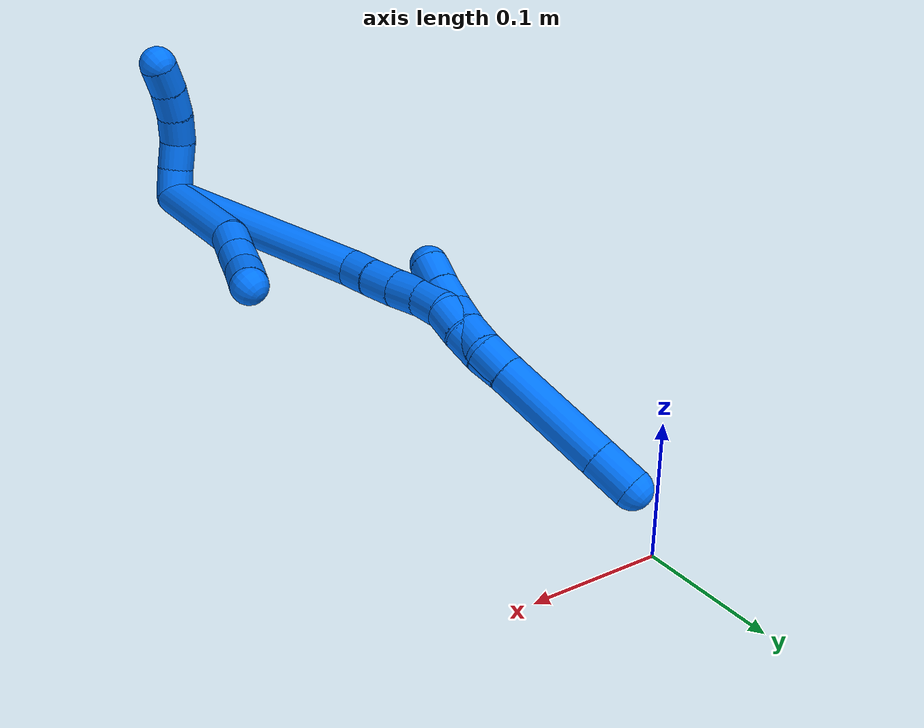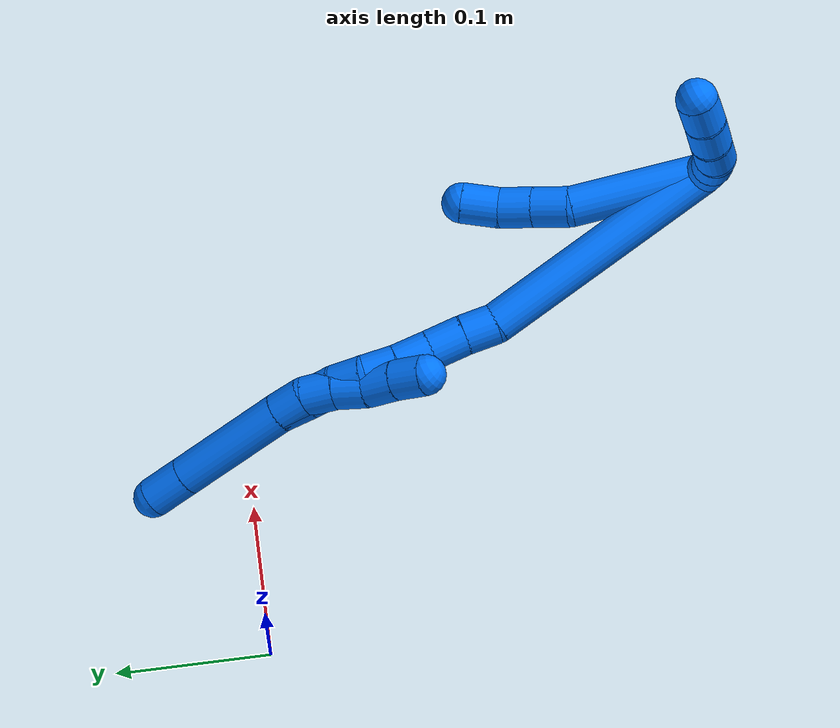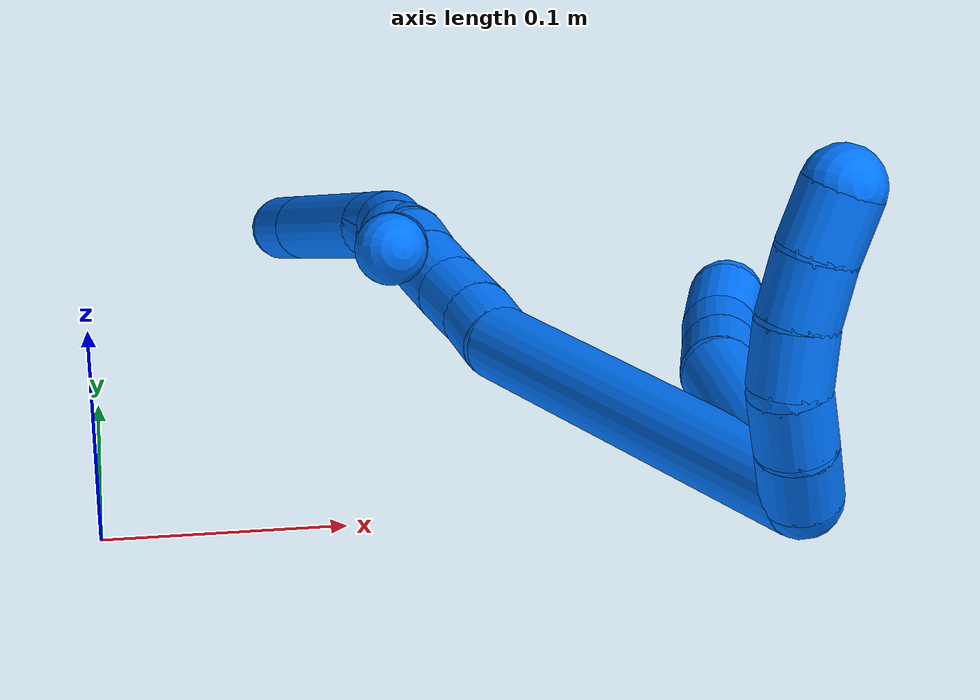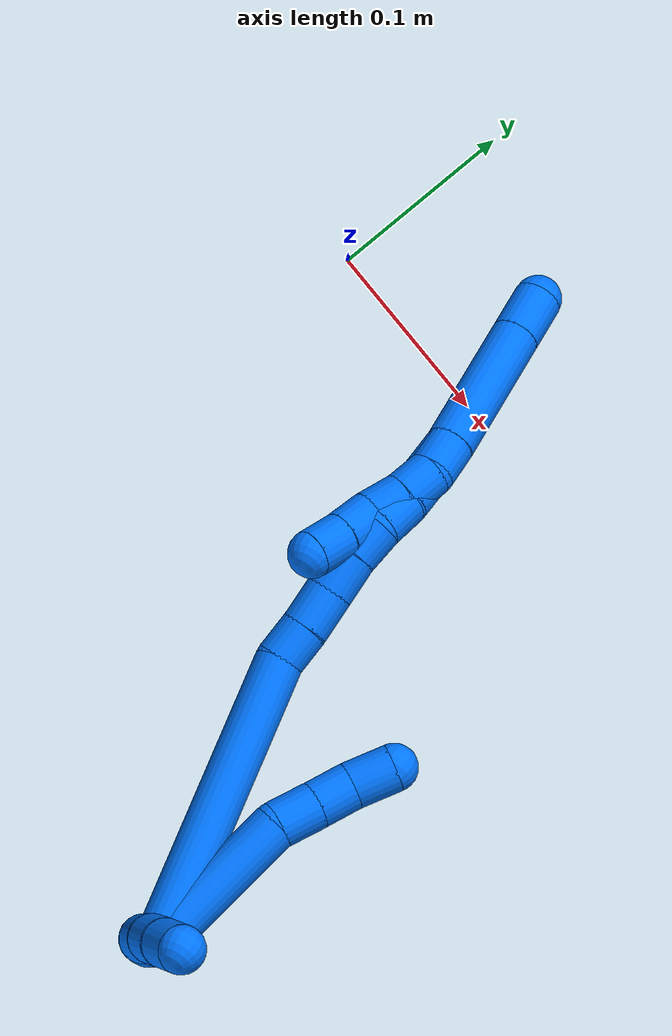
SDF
<sdf version="1.7">
 <world name="default">
  <model name="14">
   <static>0</static>
   <link name="14">
    <collision name="collision-cylinder-e_1_2_8">
     <pose>-0.011227 0.013471 -0.037434 -2.79616 -0.275037 1.34126</pose>
     <geometry><cylinder><radius>0.0125</radius><length>0.082676</length></cylinder></geometry>
     <surface>
      <friction><ode><mu>1.16</mu><mu2>1.16</mu2><slip1>0</slip1><slip2>0</slip2></ode></friction>
      <contact><ode><kp>1e+06</kp><kd>1</kd><max_vel>0</max_vel><min_depth>0.001</min_depth></ode></contact>
     </surface>
    </collision>
    <visual name="visual-cylinder-e_1_2_8">
     <pose>-0.011227 0.013471 -0.037434 -2.79616 -0.275037 1.34126</pose>
     <geometry><cylinder><radius>0.0125</radius><length>0.082676</length></cylinder></geometry>
     <material><ambient>0 0.462745 1 1</ambient></material>
    </visual>
    <collision name="collision-cylinder-e_2_8_9">
     <pose>-0.022607 0.032928 -0.084572 -2.58891 -0.013472 0.047496</pose>
     <geometry><cylinder><radius>0.0125</radius><length>0.022803</length></cylinder></geometry>
     <surface>
      <friction><ode><mu>1.16</mu><mu2>1.16</mu2><slip1>0</slip1><slip2>0</slip2></ode></friction>
      <contact><ode><kp>1e+06</kp><kd>1</kd><max_vel>0</max_vel><min_depth>0.001</min_depth></ode></contact>
     </surface>
    </collision>
    <visual name="visual-cylinder-e_2_8_9">
     <pose>-0.022607 0.032928 -0.084572 -2.58891 -0.013472 0.047496</pose>
     <geometry><cylinder><radius>0.0125</radius><length>0.022803</length></cylinder></geometry>
     <material><ambient>0 0.462745 1 1</ambient></material>
    </visual>
    <collision name="collision-cylinder-e_3_9_10">
     <pose>-0.023177 0.044339 -0.103214 -2.59598 -0.039794 0.142014</pose>
     <geometry><cylinder><radius>0.0125</radius><length>0.020932</length></cylinder></geometry>
     <surface>
      <friction><ode><mu>1.16</mu><mu2>1.16</mu2><slip1>0</slip1><slip2>0</slip2></ode></friction>
      <contact><ode><kp>1e+06</kp><kd>1</kd><max_vel>0</max_vel><min_depth>0.001</min_depth></ode></contact>
     </surface>
    </collision>
    <visual name="visual-cylinder-e_3_9_10">
     <pose>-0.023177 0.044339 -0.103214 -2.59598 -0.039794 0.142014</pose>
     <geometry><cylinder><radius>0.0125</radius><length>0.020932</length></cylinder></geometry>
     <material><ambient>0 0.462745 1 1</ambient></material>
    </visual>
    <collision name="collision-cylinder-e_4_10_6">
     <pose>-0.025261 0.057399 -0.12099 -2.42915 -0.141832 0.37727</pose>
     <geometry><cylinder><radius>0.0125</radius><length>0.023589</length></cylinder></geometry>
     <surface>
      <friction><ode><mu>1.16</mu><mu2>1.16</mu2><slip1>0</slip1><slip2>0</slip2></ode></friction>
      <contact><ode><kp>1e+06</kp><kd>1</kd><max_vel>0</max_vel><min_depth>0.001</min_depth></ode></contact>
     </surface>
    </collision>
    <visual name="visual-cylinder-e_4_10_6">
     <pose>-0.025261 0.057399 -0.12099 -2.42915 -0.141832 0.37727</pose>
     <geometry><cylinder><radius>0.0125</radius><length>0.023589</length></cylinder></geometry>
     <material><ambient>0 0.462745 1 1</ambient></material>
    </visual>
    <collision name="collision-cylinder-e_1_2_11">
     <pose>-0.008387 0.000726 0.005397 -0.133759 -0.994954 0.072712</pose>
     <geometry><cylinder><radius>0.0125</radius><length>0.02</length></cylinder></geometry>
     <surface>
      <friction><ode><mu>1.16</mu><mu2>1.16</mu2><slip1>0</slip1><slip2>0</slip2></ode></friction>
      <contact><ode><kp>1e+06</kp><kd>1</kd><max_vel>0</max_vel><min_depth>0.001</min_depth></ode></contact>
     </surface>
    </collision>
    <visual name="visual-cylinder-e_1_2_11">
     <pose>-0.008387 0.000726 0.005397 -0.133759 -0.994954 0.072712</pose>
     <geometry><cylinder><radius>0.0125</radius><length>0.02</length></cylinder></geometry>
     <material><ambient>0 0.462745 1 1</ambient></material>
    </visual>
    <collision name="collision-cylinder-e_2_11_12">
     <pose>-0.025719 0.002966 0.015001 -0.345278 -1.10724 0.214732</pose>
     <geometry><cylinder><radius>0.0125</radius><length>0.02</length></cylinder></geometry>
     <surface>
      <friction><ode><mu>1.16</mu><mu2>1.16</mu2><slip1>0</slip1><slip2>0</slip2></ode></friction>
      <contact><ode><kp>1e+06</kp><kd>1</kd><max_vel>0</max_vel><min_depth>0.001</min_depth></ode></contact>
     </surface>
    </collision>
    <visual name="visual-cylinder-e_2_11_12">
     <pose>-0.025719 0.002966 0.015001 -0.345278 -1.10724 0.214732</pose>
     <geometry><cylinder><radius>0.0125</radius><length>0.02</length></cylinder></geometry>
     <material><ambient>0 0.462745 1 1</ambient></material>
    </visual>
    <collision name="collision-cylinder-e_3_12_13">
     <pose>-0.042954 0.009076 0.022394 -0.964775 -0.97729 0.543044</pose>
     <geometry><cylinder><radius>0.0125</radius><length>0.02</length></cylinder></geometry>
     <surface>
      <friction><ode><mu>1.16</mu><mu2>1.16</mu2><slip1>0</slip1><slip2>0</slip2></ode></friction>
      <contact><ode><kp>1e+06</kp><kd>1</kd><max_vel>0</max_vel><min_depth>0.001</min_depth></ode></contact>
     </surface>
    </collision>
    <visual name="visual-cylinder-e_3_12_13">
     <pose>-0.042954 0.009076 0.022394 -0.964775 -0.97729 0.543044</pose>
     <geometry><cylinder><radius>0.0125</radius><length>0.02</length></cylinder></geometry>
     <material><ambient>0 0.462745 1 1</ambient></material>
    </visual>
    <collision name="collision-cylinder-e_4_13_14">
     <pose>-0.058597 0.019547 0.02896 -1.04859 -0.826091 0.496419</pose>
     <geometry><cylinder><radius>0.0125</radius><length>0.02</length></cylinder></geometry>
     <surface>
      <friction><ode><mu>1.16</mu><mu2>1.16</mu2><slip1>0</slip1><slip2>0</slip2></ode></friction>
      <contact><ode><kp>1e+06</kp><kd>1</kd><max_vel>0</max_vel><min_depth>0.001</min_depth></ode></contact>
     </surface>
    </collision>
    <visual name="visual-cylinder-e_4_13_14">
     <pose>-0.058597 0.019547 0.02896 -1.04859 -0.826091 0.496419</pose>
     <geometry><cylinder><radius>0.0125</radius><length>0.02</length></cylinder></geometry>
     <material><ambient>0 0.462745 1 1</ambient></material>
    </visual>
    <collision name="collision-cylinder-e_5_14_5">
     <pose>-0.072516 0.032288 0.035459 -1.14453 -0.716426 0.47327</pose>
     <geometry><cylinder><radius>0.0125</radius><length>0.02</length></cylinder></geometry>
     <surface>
      <friction><ode><mu>1.16</mu><mu2>1.16</mu2><slip1>0</slip1><slip2>0</slip2></ode></friction>
      <contact><ode><kp>1e+06</kp><kd>1</kd><max_vel>0</max_vel><min_depth>0.001</min_depth></ode></contact>
     </surface>
    </collision>
    <visual name="visual-cylinder-e_5_14_5">
     <pose>-0.072516 0.032288 0.035459 -1.14453 -0.716426 0.47327</pose>
     <geometry><cylinder><radius>0.0125</radius><length>0.02</length></cylinder></geometry>
     <material><ambient>0 0.462745 1 1</ambient></material>
    </visual>
    <collision name="collision-cylinder-e_1_2_15">
     <pose>-0.027011 -0.003777 -0.072588 3.08961 -0.355793 -2.85437</pose>
     <geometry><cylinder><radius>0.0125</radius><length>0.155085</length></cylinder></geometry>
     <surface>
      <friction><ode><mu>1.16</mu><mu2>1.16</mu2><slip1>0</slip1><slip2>0</slip2></ode></friction>
      <contact><ode><kp>1e+06</kp><kd>1</kd><max_vel>0</max_vel><min_depth>0.001</min_depth></ode></contact>
     </surface>
    </collision>
    <visual name="visual-cylinder-e_1_2_15">
     <pose>-0.027011 -0.003777 -0.072588 3.08961 -0.355793 -2.85437</pose>
     <geometry><cylinder><radius>0.0125</radius><length>0.155085</length></cylinder></geometry>
     <material><ambient>0 0.462745 1 1</ambient></material>
    </visual>
    <collision name="collision-cylinder-e_2_15_16">
     <pose>-0.057585 -0.005272 -0.154435 -2.9 -0.357604 1.9587</pose>
     <geometry><cylinder><radius>0.0125</radius><length>0.020361</length></cylinder></geometry>
     <surface>
      <friction><ode><mu>1.16</mu><mu2>1.16</mu2><slip1>0</slip1><slip2>0</slip2></ode></friction>
      <contact><ode><kp>1e+06</kp><kd>1</kd><max_vel>0</max_vel><min_depth>0.001</min_depth></ode></contact>
     </surface>
    </collision>
    <visual name="visual-cylinder-e_2_15_16">
     <pose>-0.057585 -0.005272 -0.154435 -2.9 -0.357604 1.9587</pose>
     <geometry><cylinder><radius>0.0125</radius><length>0.020361</length></cylinder></geometry>
     <material><ambient>0 0.462745 1 1</ambient></material>
    </visual>
    <collision name="collision-cylinder-e_3_16_17">
     <pose>-0.06528 -0.001303 -0.173949 -2.97845 -0.378434 2.33466</pose>
     <geometry><cylinder><radius>0.0125</radius><length>0.022366</length></cylinder></geometry>
     <surface>
      <friction><ode><mu>1.16</mu><mu2>1.16</mu2><slip1>0</slip1><slip2>0</slip2></ode></friction>
      <contact><ode><kp>1e+06</kp><kd>1</kd><max_vel>0</max_vel><min_depth>0.001</min_depth></ode></contact>
     </surface>
    </collision>
    <visual name="visual-cylinder-e_3_16_17">
     <pose>-0.06528 -0.001303 -0.173949 -2.97845 -0.378434 2.33466</pose>
     <geometry><cylinder><radius>0.0125</radius><length>0.022366</length></cylinder></geometry>
     <material><ambient>0 0.462745 1 1</ambient></material>
    </visual>
    <collision name="collision-cylinder-e_4_17_18">
     <pose>-0.07391 0.002139 -0.193982 -2.96409 -0.425073 2.35938</pose>
     <geometry><cylinder><radius>0.0125</radius><length>0.021812</length></cylinder></geometry>
     <surface>
      <friction><ode><mu>1.16</mu><mu2>1.16</mu2><slip1>0</slip1><slip2>0</slip2></ode></friction>
      <contact><ode><kp>1e+06</kp><kd>1</kd><max_vel>0</max_vel><min_depth>0.001</min_depth></ode></contact>
     </surface>
    </collision>
    <visual name="visual-cylinder-e_4_17_18">
     <pose>-0.07391 0.002139 -0.193982 -2.96409 -0.425073 2.35938</pose>
     <geometry><cylinder><radius>0.0125</radius><length>0.021812</length></cylinder></geometry>
     <material><ambient>0 0.462745 1 1</ambient></material>
    </visual>
    <collision name="collision-cylinder-e_5_18_19">
     <pose>-0.081404 0.006548 -0.212971 -2.86092 -0.303035 1.64849</pose>
     <geometry><cylinder><radius>0.0125</radius><length>0.020084</length></cylinder></geometry>
     <surface>
      <friction><ode><mu>1.16</mu><mu2>1.16</mu2><slip1>0</slip1><slip2>0</slip2></ode></friction>
      <contact><ode><kp>1e+06</kp><kd>1</kd><max_vel>0</max_vel><min_depth>0.001</min_depth></ode></contact>
     </surface>
    </collision>
    <visual name="visual-cylinder-e_5_18_19">
     <pose>-0.081404 0.006548 -0.212971 -2.86092 -0.303035 1.64849</pose>
     <geometry><cylinder><radius>0.0125</radius><length>0.020084</length></cylinder></geometry>
     <material><ambient>0 0.462745 1 1</ambient></material>
    </visual>
    <collision name="collision-cylinder-e_6_19_20">
     <pose>-0.084181 0.011527 -0.231907 -2.90703 0.021913 -0.185454</pose>
     <geometry><cylinder><radius>0.0125</radius><length>0.020005</length></cylinder></geometry>
     <surface>
      <friction><ode><mu>1.16</mu><mu2>1.16</mu2><slip1>0</slip1><slip2>0</slip2></ode></friction>
      <contact><ode><kp>1e+06</kp><kd>1</kd><max_vel>0</max_vel><min_depth>0.001</min_depth></ode></contact>
     </surface>
    </collision>
    <visual name="visual-cylinder-e_6_19_20">
     <pose>-0.084181 0.011527 -0.231907 -2.90703 0.021913 -0.185454</pose>
     <geometry><cylinder><radius>0.0125</radius><length>0.020005</length></cylinder></geometry>
     <material><ambient>0 0.462745 1 1</ambient></material>
    </visual>
    <collision name="collision-cylinder-e_7_20_21">
     <pose>-0.083844 0.014716 -0.25161 -3.05519 0.011818 -0.271696</pose>
     <geometry><cylinder><radius>0.0125</radius><length>0.02003</length></cylinder></geometry>
     <surface>
      <friction><ode><mu>1.16</mu><mu2>1.16</mu2><slip1>0</slip1><slip2>0</slip2></ode></friction>
      <contact><ode><kp>1e+06</kp><kd>1</kd><max_vel>0</max_vel><min_depth>0.001</min_depth></ode></contact>
     </surface>
    </collision>
    <visual name="visual-cylinder-e_7_20_21">
     <pose>-0.083844 0.014716 -0.25161 -3.05519 0.011818 -0.271696</pose>
     <geometry><cylinder><radius>0.0125</radius><length>0.02003</length></cylinder></geometry>
     <material><ambient>0 0.462745 1 1</ambient></material>
    </visual>
    <collision name="collision-cylinder-e_8_21_1">
     <pose>-0.085213 0.017016 -0.271501 -2.99777 -0.14744 1.59574</pose>
     <geometry><cylinder><radius>0.0125</radius><length>0.020256</length></cylinder></geometry>
     <surface>
      <friction><ode><mu>1.16</mu><mu2>1.16</mu2><slip1>0</slip1><slip2>0</slip2></ode></friction>
      <contact><ode><kp>1e+06</kp><kd>1</kd><max_vel>0</max_vel><min_depth>0.001</min_depth></ode></contact>
     </surface>
    </collision>
    <visual name="visual-cylinder-e_8_21_1">
     <pose>-0.085213 0.017016 -0.271501 -2.99777 -0.14744 1.59574</pose>
     <geometry><cylinder><radius>0.0125</radius><length>0.020256</length></cylinder></geometry>
     <material><ambient>0 0.462745 1 1</ambient></material>
    </visual>
    <collision name="collision-cylinder-e_1_1_22">
     <pose>-0.087415 0.017797 -0.318363 3.12388 -0.019301 -1.65649</pose>
     <geometry><cylinder><radius>0.0125</radius><length>0.073919</length></cylinder></geometry>
     <surface>
      <friction><ode><mu>1.16</mu><mu2>1.16</mu2><slip1>0</slip1><slip2>0</slip2></ode></friction>
      <contact><ode><kp>1e+06</kp><kd>1</kd><max_vel>0</max_vel><min_depth>0.001</min_depth></ode></contact>
     </surface>
    </collision>
    <visual name="visual-cylinder-e_1_1_22">
     <pose>-0.087415 0.017797 -0.318363 3.12388 -0.019301 -1.65649</pose>
     <geometry><cylinder><radius>0.0125</radius><length>0.073919</length></cylinder></geometry>
     <material><ambient>0 0.462745 1 1</ambient></material>
    </visual>
    <collision name="collision-cylinder-e_2_22_4">
     <pose>-0.088368 0.016916 -0.368346 3.12419 -0.018446 -1.62909</pose>
     <geometry><cylinder><radius>0.0125</radius><length>0.026081</length></cylinder></geometry>
     <surface>
      <friction><ode><mu>1.16</mu><mu2>1.16</mu2><slip1>0</slip1><slip2>0</slip2></ode></friction>
      <contact><ode><kp>1e+06</kp><kd>1</kd><max_vel>0</max_vel><min_depth>0.001</min_depth></ode></contact>
     </surface>
    </collision>
    <visual name="visual-cylinder-e_2_22_4">
     <pose>-0.088368 0.016916 -0.368346 3.12419 -0.018446 -1.62909</pose>
     <geometry><cylinder><radius>0.0125</radius><length>0.026081</length></cylinder></geometry>
     <material><ambient>0 0.462745 1 1</ambient></material>
    </visual>
    <collision name="collision-cylinder-e_1_1_23">
     <pose>-0.086719 0.018224 -0.271419 0.022821 -0.001817 -2.1e-05</pose>
     <geometry><cylinder><radius>0.0125</radius><length>0.02</length></cylinder></geometry>
     <surface>
      <friction><ode><mu>1.16</mu><mu2>1.16</mu2><slip1>0</slip1><slip2>0</slip2></ode></friction>
      <contact><ode><kp>1e+06</kp><kd>1</kd><max_vel>0</max_vel><min_depth>0.001</min_depth></ode></contact>
     </surface>
    </collision>
    <visual name="visual-cylinder-e_1_1_23">
     <pose>-0.086719 0.018224 -0.271419 0.022821 -0.001817 -2.1e-05</pose>
     <geometry><cylinder><radius>0.0125</radius><length>0.02</length></cylinder></geometry>
     <material><ambient>0 0.462745 1 1</ambient></material>
    </visual>
    <collision name="collision-cylinder-e_2_23_24">
     <pose>-0.086479 0.014827 -0.25194 0.322533 0.02589 0.004212</pose>
     <geometry><cylinder><radius>0.0125</radius><length>0.02</length></cylinder></geometry>
     <surface>
      <friction><ode><mu>1.16</mu><mu2>1.16</mu2><slip1>0</slip1><slip2>0</slip2></ode></friction>
      <contact><ode><kp>1e+06</kp><kd>1</kd><max_vel>0</max_vel><min_depth>0.001</min_depth></ode></contact>
     </surface>
    </collision>
    <visual name="visual-cylinder-e_2_23_24">
     <pose>-0.086479 0.014827 -0.25194 0.322533 0.02589 0.004212</pose>
     <geometry><cylinder><radius>0.0125</radius><length>0.02</length></cylinder></geometry>
     <material><ambient>0 0.462745 1 1</ambient></material>
    </visual>
    <collision name="collision-cylinder-e_3_24_25">
     <pose>-0.086198 0.006956 -0.233634 0.489486 0.002209 0.000552</pose>
     <geometry><cylinder><radius>0.0125</radius><length>0.02</length></cylinder></geometry>
     <surface>
      <friction><ode><mu>1.16</mu><mu2>1.16</mu2><slip1>0</slip1><slip2>0</slip2></ode></friction>
      <contact><ode><kp>1e+06</kp><kd>1</kd><max_vel>0</max_vel><min_depth>0.001</min_depth></ode></contact>
     </surface>
    </collision>
    <visual name="visual-cylinder-e_3_24_25">
     <pose>-0.086198 0.006956 -0.233634 0.489486 0.002209 0.000552</pose>
     <geometry><cylinder><radius>0.0125</radius><length>0.02</length></cylinder></geometry>
     <material><ambient>0 0.462745 1 1</ambient></material>
    </visual>
    <collision name="collision-cylinder-e_4_25_26">
     <pose>-0.08754 -0.000521 -0.215298 0.283985 -0.136827 -0.01959</pose>
     <geometry><cylinder><radius>0.0125</radius><length>0.02</length></cylinder></geometry>
     <surface>
      <friction><ode><mu>1.16</mu><mu2>1.16</mu2><slip1>0</slip1><slip2>0</slip2></ode></friction>
      <contact><ode><kp>1e+06</kp><kd>1</kd><max_vel>0</max_vel><min_depth>0.001</min_depth></ode></contact>
     </surface>
    </collision>
    <visual name="visual-cylinder-e_4_25_26">
     <pose>-0.08754 -0.000521 -0.215298 0.283985 -0.136827 -0.01959</pose>
     <geometry><cylinder><radius>0.0125</radius><length>0.02</length></cylinder></geometry>
     <material><ambient>0 0.462745 1 1</ambient></material>
    </visual>
    <collision name="collision-cylinder-e_5_26_3">
     <pose>-0.09064 -0.006749 -0.196565 0.358192 -0.174505 -0.031669</pose>
     <geometry><cylinder><radius>0.0125</radius><length>0.02</length></cylinder></geometry>
     <surface>
      <friction><ode><mu>1.16</mu><mu2>1.16</mu2><slip1>0</slip1><slip2>0</slip2></ode></friction>
      <contact><ode><kp>1e+06</kp><kd>1</kd><max_vel>0</max_vel><min_depth>0.001</min_depth></ode></contact>
     </surface>
    </collision>
    <visual name="visual-cylinder-e_5_26_3">
     <pose>-0.09064 -0.006749 -0.196565 0.358192 -0.174505 -0.031669</pose>
     <geometry><cylinder><radius>0.0125</radius><length>0.02</length></cylinder></geometry>
     <material><ambient>0 0.462745 1 1</ambient></material>
    </visual>
    <collision name="collision-sphere-3">
     <pose>-0.092376 -0.010202 -0.187342 0 -0 0</pose>
     <geometry><sphere><radius>0.0125</radius></sphere></geometry>
     <surface>
      <friction><ode><mu>1.16</mu><mu2>1.16</mu2><slip1>0</slip1><slip2>0</slip2></ode></friction>
      <contact><ode><kp>1e+06</kp><kd>1</kd><max_vel>0</max_vel><min_depth>0.001</min_depth></ode></contact>
     </surface>
    </collision>
    <visual name="visual-sphere-3">
     <pose>-0.092376 -0.010202 -0.187342 0 -0 0</pose>
     <geometry><sphere><radius>0.0125</radius></sphere></geometry>
     <material><ambient>0 0.462745 1 1</ambient></material>
    </visual>
    <collision name="collision-sphere-26">
     <pose>-0.088904 -0.003297 -0.205788 0 -0 0</pose>
     <geometry><sphere><radius>0.0125</radius></sphere></geometry>
     <surface>
      <friction><ode><mu>1.16</mu><mu2>1.16</mu2><slip1>0</slip1><slip2>0</slip2></ode></friction>
      <contact><ode><kp>1e+06</kp><kd>1</kd><max_vel>0</max_vel><min_depth>0.001</min_depth></ode></contact>
     </surface>
    </collision>
    <visual name="visual-sphere-26">
     <pose>-0.088904 -0.003297 -0.205788 0 -0 0</pose>
     <geometry><sphere><radius>0.0125</radius></sphere></geometry>
     <material><ambient>0 0.462745 1 1</ambient></material>
    </visual>
    <collision name="collision-sphere-25">
     <pose>-0.086176 0.002255 -0.224808 0 -0 0</pose>
     <geometry><sphere><radius>0.0125</radius></sphere></geometry>
     <surface>
      <friction><ode><mu>1.16</mu><mu2>1.16</mu2><slip1>0</slip1><slip2>0</slip2></ode></friction>
      <contact><ode><kp>1e+06</kp><kd>1</kd><max_vel>0</max_vel><min_depth>0.001</min_depth></ode></contact>
     </surface>
    </collision>
    <visual name="visual-sphere-25">
     <pose>-0.086176 0.002255 -0.224808 0 -0 0</pose>
     <geometry><sphere><radius>0.0125</radius></sphere></geometry>
     <material><ambient>0 0.462745 1 1</ambient></material>
    </visual>
    <collision name="collision-sphere-24">
     <pose>-0.08622 0.011658 -0.242459 0 -0 0</pose>
     <geometry><sphere><radius>0.0125</radius></sphere></geometry>
     <surface>
      <friction><ode><mu>1.16</mu><mu2>1.16</mu2><slip1>0</slip1><slip2>0</slip2></ode></friction>
      <contact><ode><kp>1e+06</kp><kd>1</kd><max_vel>0</max_vel><min_depth>0.001</min_depth></ode></contact>
     </surface>
    </collision>
    <visual name="visual-sphere-24">
     <pose>-0.08622 0.011658 -0.242459 0 -0 0</pose>
     <geometry><sphere><radius>0.0125</radius></sphere></geometry>
     <material><ambient>0 0.462745 1 1</ambient></material>
    </visual>
    <collision name="collision-sphere-23">
     <pose>-0.086738 0.017995 -0.261422 0 -0 0</pose>
     <geometry><sphere><radius>0.0125</radius></sphere></geometry>
     <surface>
      <friction><ode><mu>1.16</mu><mu2>1.16</mu2><slip1>0</slip1><slip2>0</slip2></ode></friction>
      <contact><ode><kp>1e+06</kp><kd>1</kd><max_vel>0</max_vel><min_depth>0.001</min_depth></ode></contact>
     </surface>
    </collision>
    <visual name="visual-sphere-23">
     <pose>-0.086738 0.017995 -0.261422 0 -0 0</pose>
     <geometry><sphere><radius>0.0125</radius></sphere></geometry>
     <material><ambient>0 0.462745 1 1</ambient></material>
    </visual>
    <collision name="collision-sphere-4">
     <pose>-0.088609 0.016689 -0.381383 0 -0 0</pose>
     <geometry><sphere><radius>0.0125</radius></sphere></geometry>
     <surface>
      <friction><ode><mu>1.16</mu><mu2>1.16</mu2><slip1>0</slip1><slip2>0</slip2></ode></friction>
      <contact><ode><kp>1e+06</kp><kd>1</kd><max_vel>0</max_vel><min_depth>0.001</min_depth></ode></contact>
     </surface>
    </collision>
    <visual name="visual-sphere-4">
     <pose>-0.088609 0.016689 -0.381383 0 -0 0</pose>
     <geometry><sphere><radius>0.0125</radius></sphere></geometry>
     <material><ambient>0 0.462745 1 1</ambient></material>
    </visual>
    <collision name="collision-sphere-22">
     <pose>-0.088128 0.017143 -0.35531 0 -0 0</pose>
     <geometry><sphere><radius>0.0125</radius></sphere></geometry>
     <surface>
      <friction><ode><mu>1.16</mu><mu2>1.16</mu2><slip1>0</slip1><slip2>0</slip2></ode></friction>
      <contact><ode><kp>1e+06</kp><kd>1</kd><max_vel>0</max_vel><min_depth>0.001</min_depth></ode></contact>
     </surface>
    </collision>
    <visual name="visual-sphere-22">
     <pose>-0.088128 0.017143 -0.35531 0 -0 0</pose>
     <geometry><sphere><radius>0.0125</radius></sphere></geometry>
     <material><ambient>0 0.462745 1 1</ambient></material>
    </visual>
    <collision name="collision-sphere-1">
     <pose>-0.086701 0.018452 -0.281416 0 -0 0</pose>
     <geometry><sphere><radius>0.0125</radius></sphere></geometry>
     <surface>
      <friction><ode><mu>1.16</mu><mu2>1.16</mu2><slip1>0</slip1><slip2>0</slip2></ode></friction>
      <contact><ode><kp>1e+06</kp><kd>1</kd><max_vel>0</max_vel><min_depth>0.001</min_depth></ode></contact>
     </surface>
    </collision>
    <visual name="visual-sphere-1">
     <pose>-0.086701 0.018452 -0.281416 0 -0 0</pose>
     <geometry><sphere><radius>0.0125</radius></sphere></geometry>
     <material><ambient>0 0.462745 1 1</ambient></material>
    </visual>
    <collision name="collision-sphere-21">
     <pose>-0.083725 0.01558 -0.261587 0 -0 0</pose>
     <geometry><sphere><radius>0.0125</radius></sphere></geometry>
     <surface>
      <friction><ode><mu>1.16</mu><mu2>1.16</mu2><slip1>0</slip1><slip2>0</slip2></ode></friction>
      <contact><ode><kp>1e+06</kp><kd>1</kd><max_vel>0</max_vel><min_depth>0.001</min_depth></ode></contact>
     </surface>
    </collision>
    <visual name="visual-sphere-21">
     <pose>-0.083725 0.01558 -0.261587 0 -0 0</pose>
     <geometry><sphere><radius>0.0125</radius></sphere></geometry>
     <material><ambient>0 0.462745 1 1</ambient></material>
    </visual>
    <collision name="collision-sphere-11">
     <pose>-0.016775 0.001452 0.010794 0 -0 0</pose>
     <geometry><sphere><radius>0.0125</radius></sphere></geometry>
     <surface>
      <friction><ode><mu>1.16</mu><mu2>1.16</mu2><slip1>0</slip1><slip2>0</slip2></ode></friction>
      <contact><ode><kp>1e+06</kp><kd>1</kd><max_vel>0</max_vel><min_depth>0.001</min_depth></ode></contact>
     </surface>
    </collision>
    <visual name="visual-sphere-11">
     <pose>-0.016775 0.001452 0.010794 0 -0 0</pose>
     <geometry><sphere><radius>0.0125</radius></sphere></geometry>
     <material><ambient>0 0.462745 1 1</ambient></material>
    </visual>
    <collision name="collision-sphere-6">
     <pose>-0.026928 0.065031 -0.129826 0 -0 0</pose>
     <geometry><sphere><radius>0.0125</radius></sphere></geometry>
     <surface>
      <friction><ode><mu>1.16</mu><mu2>1.16</mu2><slip1>0</slip1><slip2>0</slip2></ode></friction>
      <contact><ode><kp>1e+06</kp><kd>1</kd><max_vel>0</max_vel><min_depth>0.001</min_depth></ode></contact>
     </surface>
    </collision>
    <visual name="visual-sphere-6">
     <pose>-0.026928 0.065031 -0.129826 0 -0 0</pose>
     <geometry><sphere><radius>0.0125</radius></sphere></geometry>
     <material><ambient>0 0.462745 1 1</ambient></material>
    </visual>
    <collision name="collision-sphere-10">
     <pose>-0.023593 0.049766 -0.112154 0 -0 0</pose>
     <geometry><sphere><radius>0.0125</radius></sphere></geometry>
     <surface>
      <friction><ode><mu>1.16</mu><mu2>1.16</mu2><slip1>0</slip1><slip2>0</slip2></ode></friction>
      <contact><ode><kp>1e+06</kp><kd>1</kd><max_vel>0</max_vel><min_depth>0.001</min_depth></ode></contact>
     </surface>
    </collision>
    <visual name="visual-sphere-10">
     <pose>-0.023593 0.049766 -0.112154 0 -0 0</pose>
     <geometry><sphere><radius>0.0125</radius></sphere></geometry>
     <material><ambient>0 0.462745 1 1</ambient></material>
    </visual>
    <collision name="collision-sphere-9">
     <pose>-0.022761 0.038913 -0.094275 0 -0 0</pose>
     <geometry><sphere><radius>0.0125</radius></sphere></geometry>
     <surface>
      <friction><ode><mu>1.16</mu><mu2>1.16</mu2><slip1>0</slip1><slip2>0</slip2></ode></friction>
      <contact><ode><kp>1e+06</kp><kd>1</kd><max_vel>0</max_vel><min_depth>0.001</min_depth></ode></contact>
     </surface>
    </collision>
    <visual name="visual-sphere-9">
     <pose>-0.022761 0.038913 -0.094275 0 -0 0</pose>
     <geometry><sphere><radius>0.0125</radius></sphere></geometry>
     <material><ambient>0 0.462745 1 1</ambient></material>
    </visual>
    <collision name="collision-sphere-2">
     <geometry><sphere><radius>0.0125</radius></sphere></geometry>
     <surface>
      <friction><ode><mu>1.16</mu><mu2>1.16</mu2><slip1>0</slip1><slip2>0</slip2></ode></friction>
      <contact><ode><kp>1e+06</kp><kd>1</kd><max_vel>0</max_vel><min_depth>0.001</min_depth></ode></contact>
     </surface>
    </collision>
    <visual name="visual-sphere-2">
     <geometry><sphere><radius>0.0125</radius></sphere></geometry>
     <material><ambient>0 0.462745 1 1</ambient></material>
    </visual>
    <collision name="collision-sphere-19">
     <pose>-0.084401 0.009203 -0.22218 0 -0 0</pose>
     <geometry><sphere><radius>0.0125</radius></sphere></geometry>
     <surface>
      <friction><ode><mu>1.16</mu><mu2>1.16</mu2><slip1>0</slip1><slip2>0</slip2></ode></friction>
      <contact><ode><kp>1e+06</kp><kd>1</kd><max_vel>0</max_vel><min_depth>0.001</min_depth></ode></contact>
     </surface>
    </collision>
    <visual name="visual-sphere-19">
     <pose>-0.084401 0.009203 -0.22218 0 -0 0</pose>
     <geometry><sphere><radius>0.0125</radius></sphere></geometry>
     <material><ambient>0 0.462745 1 1</ambient></material>
    </visual>
    <collision name="collision-sphere-8">
     <pose>-0.022453 0.026942 -0.074869 0 -0 0</pose>
     <geometry><sphere><radius>0.0125</radius></sphere></geometry>
     <surface>
      <friction><ode><mu>1.16</mu><mu2>1.16</mu2><slip1>0</slip1><slip2>0</slip2></ode></friction>
      <contact><ode><kp>1e+06</kp><kd>1</kd><max_vel>0</max_vel><min_depth>0.001</min_depth></ode></contact>
     </surface>
    </collision>
    <visual name="visual-sphere-8">
     <pose>-0.022453 0.026942 -0.074869 0 -0 0</pose>
     <geometry><sphere><radius>0.0125</radius></sphere></geometry>
     <material><ambient>0 0.462745 1 1</ambient></material>
    </visual>
    <collision name="collision-sphere-12">
     <pose>-0.034664 0.004479 0.019208 0 -0 0</pose>
     <geometry><sphere><radius>0.0125</radius></sphere></geometry>
     <surface>
      <friction><ode><mu>1.16</mu><mu2>1.16</mu2><slip1>0</slip1><slip2>0</slip2></ode></friction>
      <contact><ode><kp>1e+06</kp><kd>1</kd><max_vel>0</max_vel><min_depth>0.001</min_depth></ode></contact>
     </surface>
    </collision>
    <visual name="visual-sphere-12">
     <pose>-0.034664 0.004479 0.019208 0 -0 0</pose>
     <geometry><sphere><radius>0.0125</radius></sphere></geometry>
     <material><ambient>0 0.462745 1 1</ambient></material>
    </visual>
    <collision name="collision-sphere-13">
     <pose>-0.051244 0.013673 0.02558 0 -0 0</pose>
     <geometry><sphere><radius>0.0125</radius></sphere></geometry>
     <surface>
      <friction><ode><mu>1.16</mu><mu2>1.16</mu2><slip1>0</slip1><slip2>0</slip2></ode></friction>
      <contact><ode><kp>1e+06</kp><kd>1</kd><max_vel>0</max_vel><min_depth>0.001</min_depth></ode></contact>
     </surface>
    </collision>
    <visual name="visual-sphere-13">
     <pose>-0.051244 0.013673 0.02558 0 -0 0</pose>
     <geometry><sphere><radius>0.0125</radius></sphere></geometry>
     <material><ambient>0 0.462745 1 1</ambient></material>
    </visual>
    <collision name="collision-sphere-14">
     <pose>-0.065949 0.025421 0.032341 0 -0 0</pose>
     <geometry><sphere><radius>0.0125</radius></sphere></geometry>
     <surface>
      <friction><ode><mu>1.16</mu><mu2>1.16</mu2><slip1>0</slip1><slip2>0</slip2></ode></friction>
      <contact><ode><kp>1e+06</kp><kd>1</kd><max_vel>0</max_vel><min_depth>0.001</min_depth></ode></contact>
     </surface>
    </collision>
    <visual name="visual-sphere-14">
     <pose>-0.065949 0.025421 0.032341 0 -0 0</pose>
     <geometry><sphere><radius>0.0125</radius></sphere></geometry>
     <material><ambient>0 0.462745 1 1</ambient></material>
    </visual>
    <collision name="collision-sphere-5">
     <pose>-0.079083 0.039155 0.038577 0 -0 0</pose>
     <geometry><sphere><radius>0.0125</radius></sphere></geometry>
     <surface>
      <friction><ode><mu>1.16</mu><mu2>1.16</mu2><slip1>0</slip1><slip2>0</slip2></ode></friction>
      <contact><ode><kp>1e+06</kp><kd>1</kd><max_vel>0</max_vel><min_depth>0.001</min_depth></ode></contact>
     </surface>
    </collision>
    <visual name="visual-sphere-5">
     <pose>-0.079083 0.039155 0.038577 0 -0 0</pose>
     <geometry><sphere><radius>0.0125</radius></sphere></geometry>
     <material><ambient>0 0.462745 1 1</ambient></material>
    </visual>
    <collision name="collision-sphere-15">
     <pose>-0.054021 -0.007554 -0.145176 0 -0 0</pose>
     <geometry><sphere><radius>0.0125</radius></sphere></geometry>
     <surface>
      <friction><ode><mu>1.16</mu><mu2>1.16</mu2><slip1>0</slip1><slip2>0</slip2></ode></friction>
      <contact><ode><kp>1e+06</kp><kd>1</kd><max_vel>0</max_vel><min_depth>0.001</min_depth></ode></contact>
     </surface>
    </collision>
    <visual name="visual-sphere-15">
     <pose>-0.054021 -0.007554 -0.145176 0 -0 0</pose>
     <geometry><sphere><radius>0.0125</radius></sphere></geometry>
     <material><ambient>0 0.462745 1 1</ambient></material>
    </visual>
    <collision name="collision-sphere-16">
     <pose>-0.061149 -0.002991 -0.163695 0 -0 0</pose>
     <geometry><sphere><radius>0.0125</radius></sphere></geometry>
     <surface>
      <friction><ode><mu>1.16</mu><mu2>1.16</mu2><slip1>0</slip1><slip2>0</slip2></ode></friction>
      <contact><ode><kp>1e+06</kp><kd>1</kd><max_vel>0</max_vel><min_depth>0.001</min_depth></ode></contact>
     </surface>
    </collision>
    <visual name="visual-sphere-16">
     <pose>-0.061149 -0.002991 -0.163695 0 -0 0</pose>
     <geometry><sphere><radius>0.0125</radius></sphere></geometry>
     <material><ambient>0 0.462745 1 1</ambient></material>
    </visual>
    <collision name="collision-sphere-17">
     <pose>-0.069412 0.000385 -0.184203 0 -0 0</pose>
     <geometry><sphere><radius>0.0125</radius></sphere></geometry>
     <surface>
      <friction><ode><mu>1.16</mu><mu2>1.16</mu2><slip1>0</slip1><slip2>0</slip2></ode></friction>
      <contact><ode><kp>1e+06</kp><kd>1</kd><max_vel>0</max_vel><min_depth>0.001</min_depth></ode></contact>
     </surface>
    </collision>
    <visual name="visual-sphere-17">
     <pose>-0.069412 0.000385 -0.184203 0 -0 0</pose>
     <geometry><sphere><radius>0.0125</radius></sphere></geometry>
     <material><ambient>0 0.462745 1 1</ambient></material>
    </visual>
    <collision name="collision-sphere-18">
     <pose>-0.078407 0.003893 -0.203762 0 -0 0</pose>
     <geometry><sphere><radius>0.0125</radius></sphere></geometry>
     <surface>
      <friction><ode><mu>1.16</mu><mu2>1.16</mu2><slip1>0</slip1><slip2>0</slip2></ode></friction>
      <contact><ode><kp>1e+06</kp><kd>1</kd><max_vel>0</max_vel><min_depth>0.001</min_depth></ode></contact>
     </surface>
    </collision>
    <visual name="visual-sphere-18">
     <pose>-0.078407 0.003893 -0.203762 0 -0 0</pose>
     <geometry><sphere><radius>0.0125</radius></sphere></geometry>
     <material><ambient>0 0.462745 1 1</ambient></material>
    </visual>
    <collision name="collision-sphere-20">
     <pose>-0.083962 0.013852 -0.241633 0 -0 0</pose>
     <geometry><sphere><radius>0.0125</radius></sphere></geometry>
     <surface>
      <friction><ode><mu>1.16</mu><mu2>1.16</mu2><slip1>0</slip1><slip2>0</slip2></ode></friction>
      <contact><ode><kp>1e+06</kp><kd>1</kd><max_vel>0</max_vel><min_depth>0.001</min_depth></ode></contact>
     </surface>
    </collision>
    <visual name="visual-sphere-20">
     <pose>-0.083962 0.013852 -0.241633 0 -0 0</pose>
     <geometry><sphere><radius>0.0125</radius></sphere></geometry>
     <material><ambient>0 0.462745 1 1</ambient></material>
    </visual>
    <inertial>
     <pose>-0.052486 0.010902 -0.141854 0 -0 0</pose>
     <mass>0.75</mass>
     <inertia>
      <ixx>-0.000344</ixx>
      <ixy>0</ixy>
      <ixz>0</ixz>
      <iyy>0.000251</iyy>
      <iyz>0</iyz>
      <izz>9.8e-05</izz>
     </inertia>
    </inertial>
   </link>
   <pose>0.208556 -0.294794 0.213833 0.5489 0.968657 -0.622799</pose>
  </model>
 </world>
</sdf>
